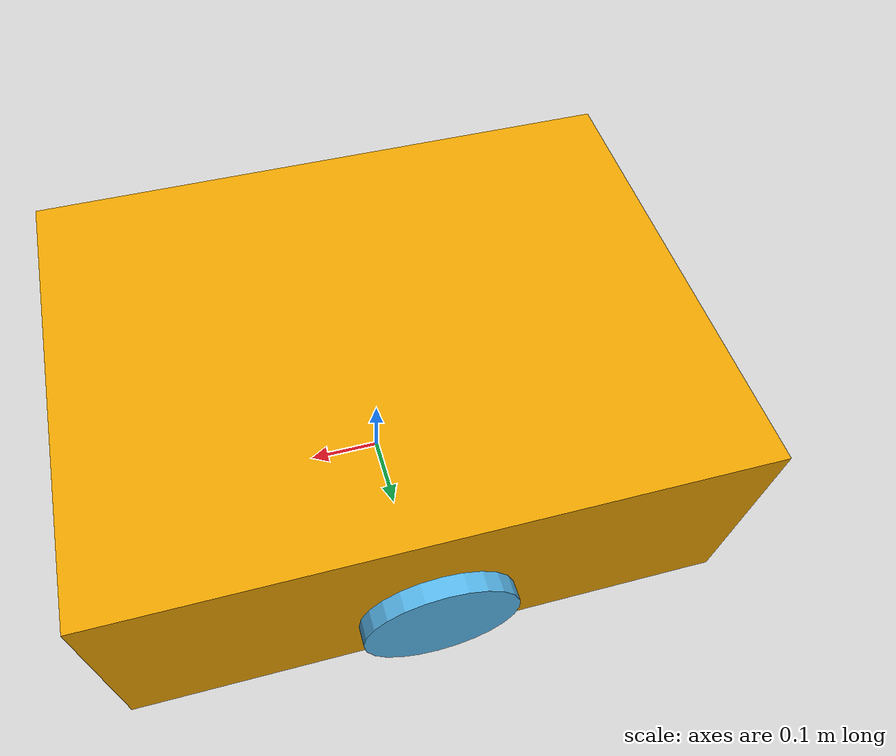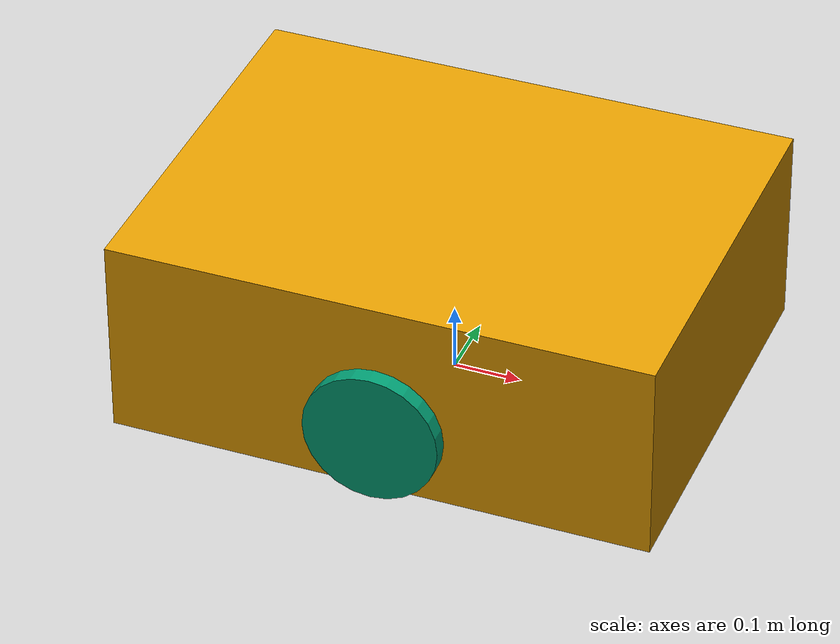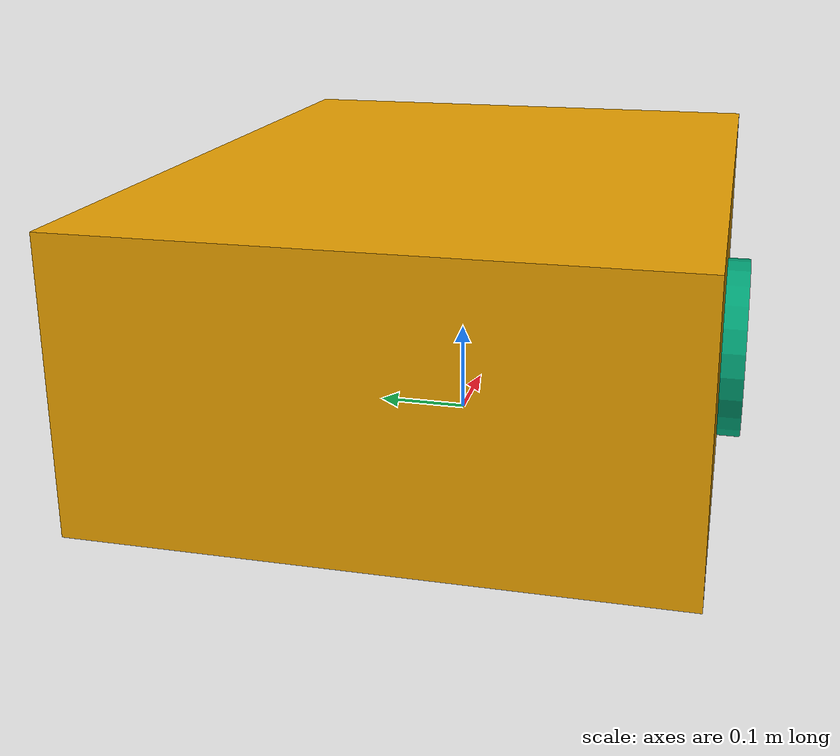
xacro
<?xml version="1.0"?>
<robot xmlns:xacro="http://www.ros.org/wiki/xacro" name="robot_base">
  <xacro:include filename="$(find robot_base_hal)/urdf/base.ros2_control.xacro"/>
  <link name="base_link">
    <visual><geometry><box size="0.8 0.6 0.3"/></geometry><origin xyz="0 0 0.15"/></visual>
    <collision><geometry><box size="0.8 0.6 0.3"/></geometry><origin xyz="0 0 0.15"/></collision>
    <inertial><mass value="100.0"/><inertia ixx="5" ixy="0" ixz="0" iyy="5" iyz="0" izz="5"/></inertial>
  </link>
  <link name="left_wheel_link">
    <visual><geometry><cylinder radius="0.1" length="0.05"/></geometry></visual>
    <collision><geometry><cylinder radius="0.1" length="0.05"/></geometry></collision>
    <inertial><mass value="2.0"/><inertia ixx="0.01" ixy="0" ixz="0" iyy="0.01" iyz="0" izz="0.01"/></inertial>
  </link>
  <joint name="left_wheel" type="continuous">
    <parent link="base_link"/><child link="left_wheel_link"/>
    <origin xyz="0 0.3 0.1" rpy="-1.5708 0 0"/><axis xyz="0 0 1"/>
  </joint>
  <link name="right_wheel_link">
    <visual><geometry><cylinder radius="0.1" length="0.05"/></geometry></visual>
    <collision><geometry><cylinder radius="0.1" length="0.05"/></geometry></collision>
    <inertial><mass value="2.0"/><inertia ixx="0.01" ixy="0" ixz="0" iyy="0.01" iyz="0" izz="0.01"/></inertial>
  </link>
  <joint name="right_wheel" type="continuous">
    <parent link="base_link"/><child link="right_wheel_link"/>
    <origin xyz="0 -0.3 0.1" rpy="-1.5708 0 0"/><axis xyz="0 0 1"/>
  </joint>
  <link name="caster_link">
    <visual><geometry><sphere radius="0.05"/></geometry></visual>
    <collision><geometry><sphere radius="0.05"/></geometry></collision>
    <inertial><mass value="0.5"/><inertia ixx="0.001" ixy="0" ixz="0" iyy="0.001" iyz="0" izz="0.001"/></inertial>
  </link>
  <joint name="caster_joint" type="fixed">
    <parent link="base_link"/><child link="caster_link"/>
    <origin xyz="-0.3 0 0.05"/>
  </joint>
  <link name="torso_mount"/>
  <joint name="torso_mount_joint" type="fixed">
    <parent link="base_link"/><child link="torso_mount"/>
    <origin xyz="0 0 0.3"/>
  </joint>
  <xacro:base_ros2_control name="base" use_fake_hardware="true" use_gazebo="false"/>
</robot>
